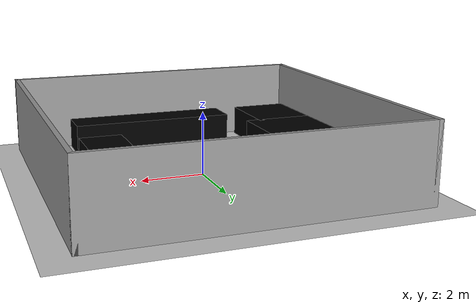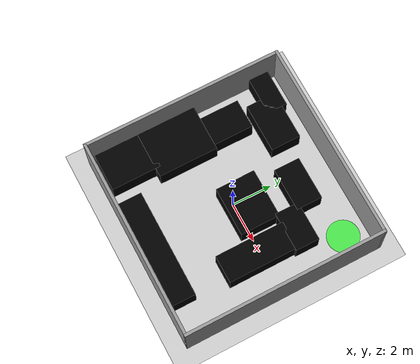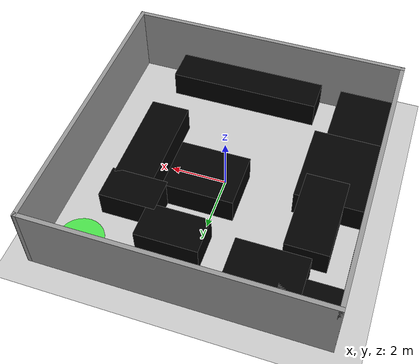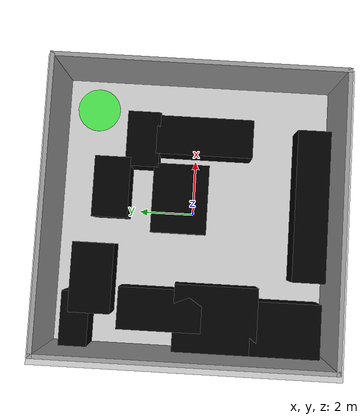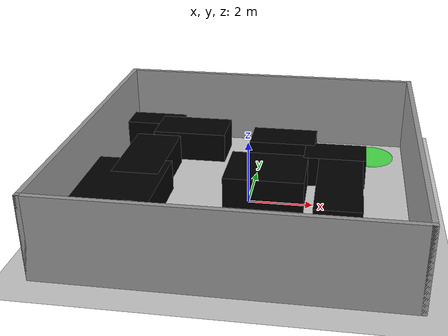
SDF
<?xml version="1.0" ?>
<sdf version="1.6">
  <world name="env_40pct_right_route">
    <gravity>0 0 -9.8</gravity>

    <!-- Lighting & Ground -->
    <include><uri>model://sun</uri></include>
    <include><uri>model://ground_plane</uri></include>

    <!-- Walls -->
    <model name="walls">
      <static>true</static>
      <link name="link">
        <collision name="bottom_collision"><geometry><box><size>10.15 0.15 2.5</size></box></geometry><pose>0 -5 1.25 0 0 0</pose></collision>
        <visual name="bottom_visual"><geometry><box><size>10.15 0.15 2.5</size></box></geometry><pose>0 -5 1.25 0 0 0</pose><material><ambient>0.6 0.6 0.6 1</ambient></material></visual>
        <collision name="top_collision"><geometry><box><size>10.15 0.15 2.5</size></box></geometry><pose>0 5 1.25 0 0 0</pose></collision>
        <visual name="top_visual"><geometry><box><size>10.15 0.15 2.5</size></box></geometry><pose>0 5 1.25 0 0 0</pose><material><ambient>0.6 0.6 0.6 1</ambient></material></visual>
        <collision name="left_collision"><geometry><box><size>0.15 10.15 2.5</size></box></geometry><pose>-5 0 1.25 0 0 0</pose></collision>
        <visual name="left_visual"><geometry><box><size>0.15 10.15 2.5</size></box></geometry><pose>-5 0 1.25 0 0 0</pose><material><ambient>0.6 0.6 0.6 1</ambient></material></visual>
        <collision name="right_collision"><geometry><box><size>0.15 10.15 2.5</size></box></geometry><pose>5 0 1.25 0 0 0</pose></collision>
        <visual name="right_visual"><geometry><box><size>0.15 10.15 2.5</size></box></geometry><pose>5 0 1.25 0 0 0</pose><material><ambient>0.6 0.6 0.6 1</ambient></material></visual>
      </link>
    </model>

    <!-- Start -->
    <model name="start_marker">
      <static>true</static>
      <pose>-0 0 0 0 0 0</pose>
      <link name="link">
        <visual name="visual"><geometry><cylinder><radius>0.15</radius><length>0.1</length></cylinder></geometry><material><ambient>0 0 1 0.8</ambient></material></visual>
      </link>
    </model>

    <!-- Goal -->
    <model name="goal_region">
      <static>true</static>
      <pose>3.8 3.8 0.05 0 0 0</pose>
      <link name="link">
        <visual name="visual"><geometry><cylinder><radius>0.8</radius><length>0.05</length></cylinder></geometry><material><ambient>0 1 0 0.6</ambient></material></visual>
      </link>
    </model>

    <!--  Obstacles  -->
    <model name="obs0"><static>true</static><pose>-3.8 -1.0 0.5 0 0 0</pose>
      <link name="link">
        <collision name="collision"><geometry><box><size>2.5 3.0 1.0</size></box></geometry></collision>
        <visual name="visual"><geometry><box><size>2.5 3.0 1.0</size></box></geometry><material><ambient>0 0 0 1</ambient></material></visual>
      </link>
    </model>
    <model name="obs1"><static>true</static><pose>-4.0 -3.5 0.5 0 0 0</pose>
      <link name="link">
        <collision name="collision"><geometry><box><size>2.0 2.5 1.0</size></box></geometry></collision>
        <visual name="visual"><geometry><box><size>2.0 2.5 1.0</size></box></geometry><material><ambient>0 0 0 1</ambient></material></visual>
      </link>
    </model>
    <model name="obs2"><static>true</static><pose>0.5 -4.25 0.5 0 0 0</pose>
      <link name="link">
        <collision name="collision"><geometry><box><size>5.5 1.2 1.0</size></box></geometry></collision>
        <visual name="visual"><geometry><box><size>5.5 1.2 1.0</size></box></geometry><material><ambient>0 0 0 1</ambient></material></visual>
      </link>
    </model>
    <model name="obs3"><static>true</static><pose>-3.5 1.0 0.5 0 0 0</pose>
      <link name="link">
        <collision name="collision"><geometry><box><size>1.5 3.0 1.0</size></box></geometry></collision>
        <visual name="visual"><geometry><box><size>1.5 3.0 1.0</size></box></geometry><material><ambient>0 0 0 1</ambient></material></visual>
      </link>
    </model>
    <model name="obs4"><static>true</static><pose>0.5 0.5 0.5 0 0 0</pose>
      <link name="link">
        <collision name="collision"><geometry><box><size>2.5 2.0 1.0</size></box></geometry></collision>
        <visual name="visual"><geometry><box><size>2.5 2.0 1.0</size></box></geometry><material><ambient>0 0 0 1</ambient></material></visual>
      </link>
    </model>
    <model name="obs5"><static>true</static><pose>2.8 -0.28 0.5 0 0 0</pose>
      <link name="link">
        <collision name="collision"><geometry><box><size>1.4 3.5 1.0</size></box></geometry></collision>
        <visual name="visual"><geometry><box><size>1.4 3.5 1.0</size></box></geometry><material><ambient>0 0 0 1</ambient></material></visual>
      </link>
    </model>
    <model name="obs6"><static>true</static><pose>-2.5 3.5 0.5 0 0 0</pose>
      <link name="link">
        <collision name="collision"><geometry><box><size>2.5 1.5 1.0</size></box></geometry></collision>
        <visual name="visual"><geometry><box><size>2.5 1.5 1.0</size></box></geometry><material><ambient>0 0 0 1</ambient></material></visual>
      </link>
    </model>
    <model name="obs7"><static>true</static><pose>0.8 3.0 0.5 0 0 0</pose>
      <link name="link">
        <collision name="collision"><geometry><box><size>2.2 1.3 1.0</size></box></geometry></collision>
        <visual name="visual"><geometry><box><size>2.2 1.3 1.0</size></box></geometry><material><ambient>0 0 0 1</ambient></material></visual>
      </link>
    </model>
    <model name="obs8"><static>true</static><pose>2.6 1.95 0.5 0 0 0</pose>
      <link name="link">
        <collision name="collision"><geometry><box><size>2.0 1.2 1.0</size></box></geometry></collision>
        <visual name="visual"><geometry><box><size>2.0 1.2 1.0</size></box></geometry><material><ambient>0 0 0 1</ambient></material></visual>
      </link>
    </model>
    <model name="obs9"><static>true</static><pose>-4.0 4.0 0.5 0 0 0</pose>
      <link name="link">
        <collision name="collision"><geometry><box><size>2.0 1.0 1.0</size></box></geometry></collision>
        <visual name="visual"><geometry><box><size>2.0 1.0 1.0</size></box></geometry><material><ambient>0 0 0 1</ambient></material></visual>
      </link>
    </model>
  </world>
</sdf>
